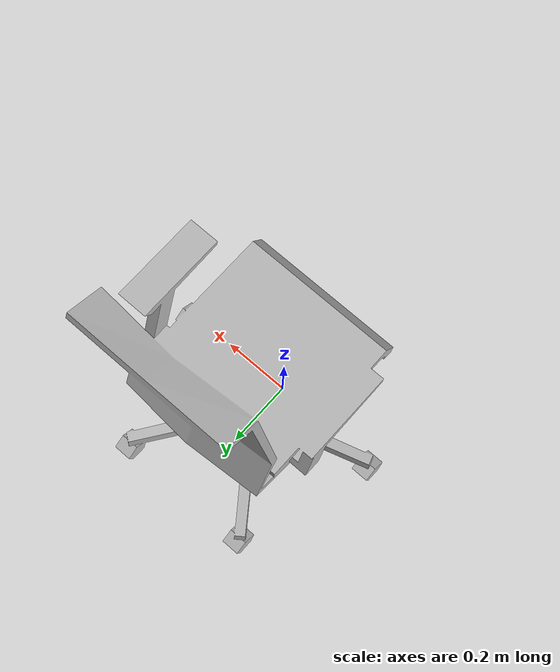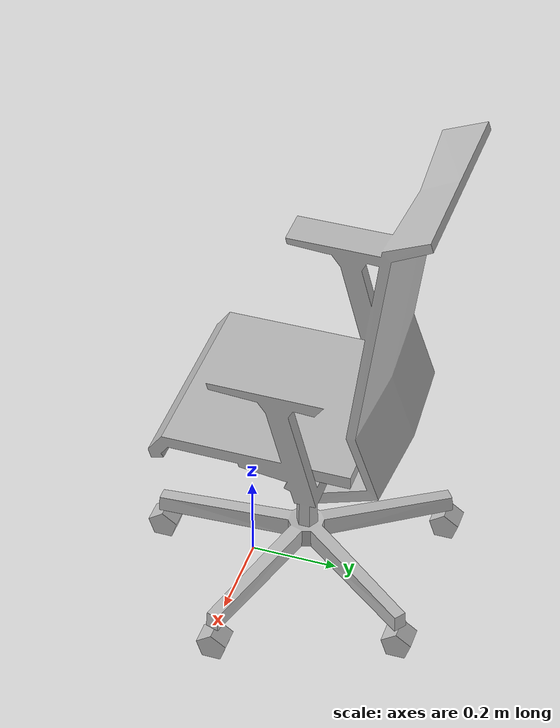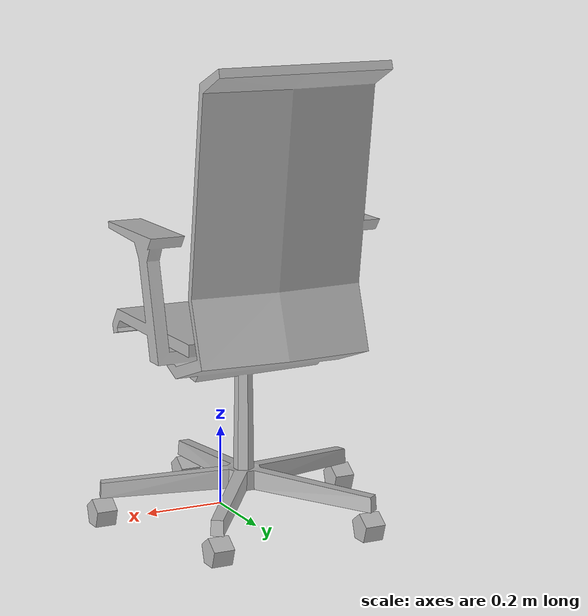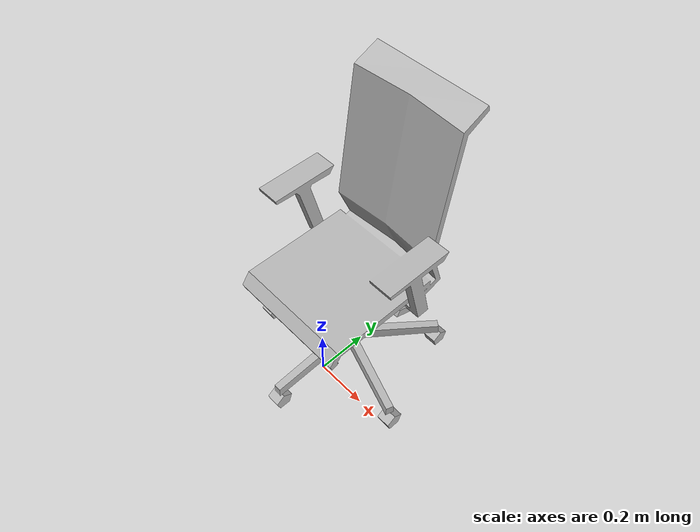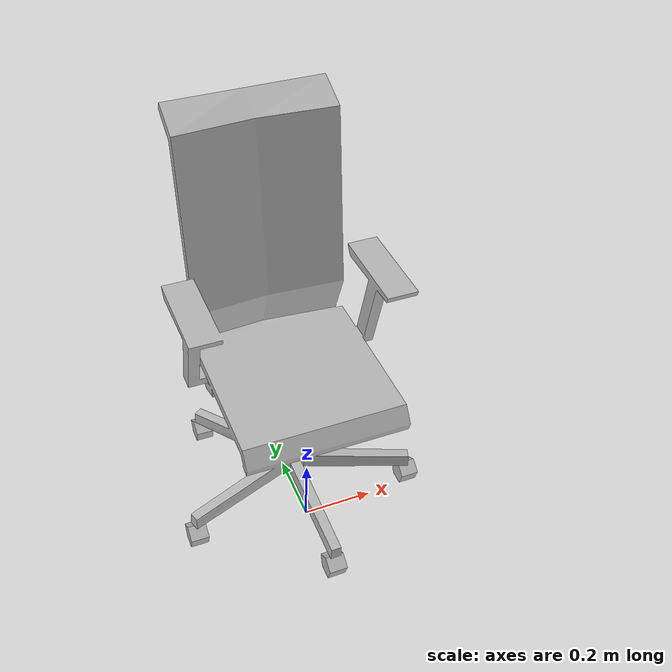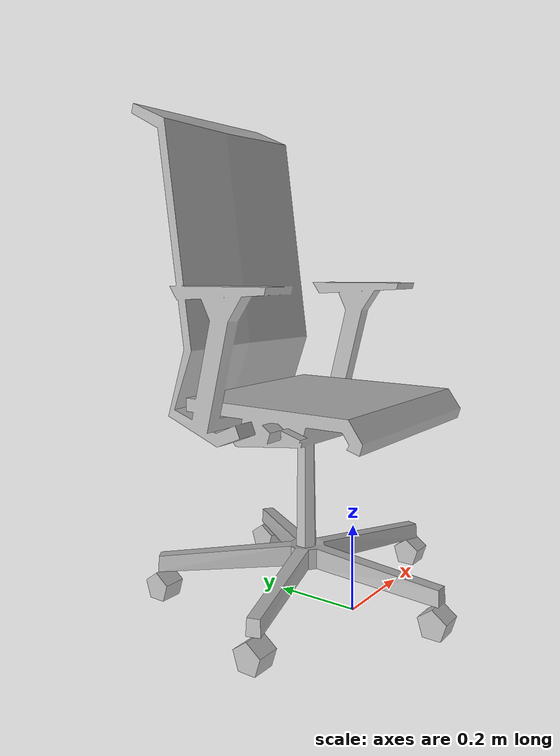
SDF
<?xml version='1.0' encoding='utf-8'?>
<sdf version="1.6">
  <model name="OfficeChairGrey">
   <static>true</static>
    <link name="body">
      <pose>0 0 0 0 0 0</pose>

      <visual name="visual">
        <geometry>
          <mesh>
            <uri>model://OfficeChairGrey/meshes/OfficeChairGrey.obj</uri>
          </mesh>
        </geometry>
      </visual>

      <collision name="collision">
        <geometry>
          <mesh>
            <uri>model://OfficeChairGrey/meshes/OfficeChairGrey_Col.obj</uri>
          </mesh>
        </geometry>
      </collision>

    </link>
  </model>
</sdf>
